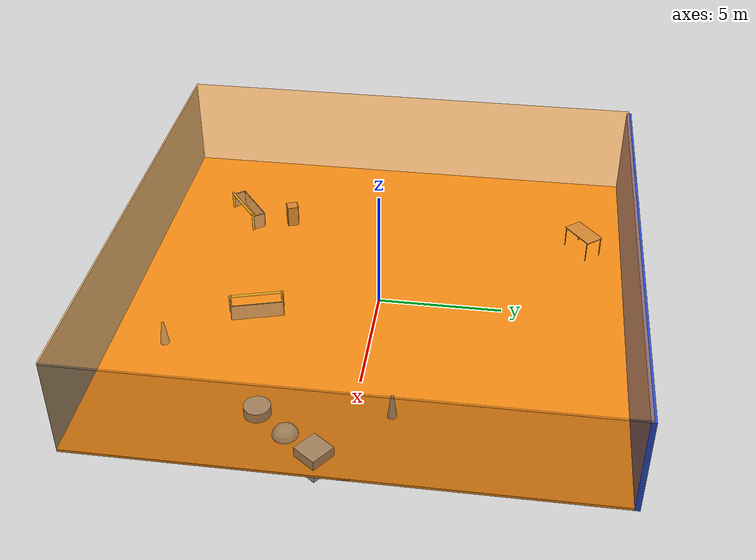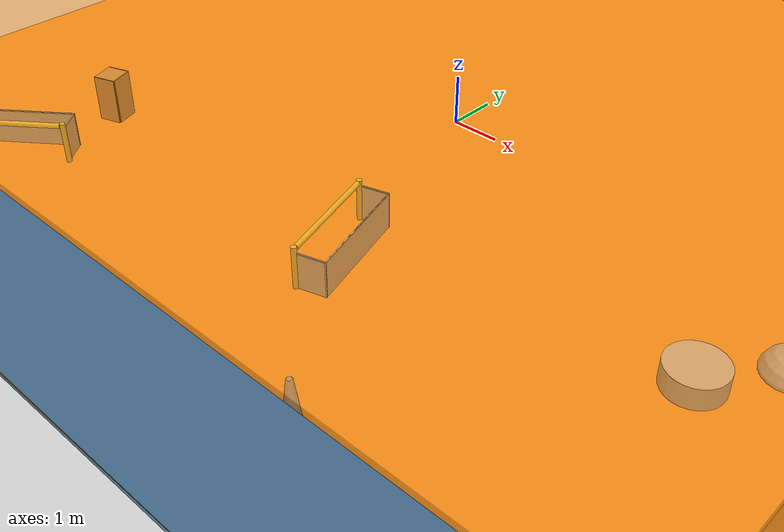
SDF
<sdf version="1.4">
 <world name="default">
  <physics type="ode">
   <max_step_size>0.001</max_step_size>
   <real_time_factor>1</real_time_factor>
   <real_time_update_rate>1000</real_time_update_rate>
   <gravity>0 0 -9.8</gravity>
  </physics>
  <scene><ambient>0.4 0.4 0.4 1</ambient><background>0.7 0.7 0.7 1</background><shadows>1</shadows></scene>
  <model name="Surrounding">
   <static>1</static>
   <link name="Ceiling">
    <collision name="Ceiling_Collision"><geometry><box><size>20 20 0.1</size></box></geometry></collision>
    <visual name="Ceiling_Visual">
     <geometry><box><size>20 20 0.1</size></box></geometry>
     <material>
      <script>
       <uri>file://media/materials/scripts/gazebo.material</uri>
       <name>Gazebo/OrangeTransparent</name>
      </script>
     </material>
    </visual>
    <pose>0 0 4.05 0 0 0</pose>
   </link>
   <link name="Wall_South">
    <collision name="Wall_South_Collision">
     <geometry><box><size>20 0 4</size></box></geometry>
     <pose>0 0 2 0 -0 0</pose>
    </collision>
    <visual name="Wall_South_Visual">
     <pose>0 0 2 0 -0 0</pose>
     <geometry><box><size>20 0 4</size></box></geometry>
     <material>
      <script><uri>file://media/materials/scripts/gazebo.material</uri><name>Gazebo/SkyBlue</name></script>
     </material>
    </visual>
    <velocity_decay><linear>0</linear><angular>0</angular></velocity_decay>
    <pose>0 -10 0 0 -0 0</pose>
   </link>
   <link name="Wall_East">
    <collision name="Wall_21_Collision">
     <geometry><box><size>20 0 4</size></box></geometry>
     <pose>0 0 2 0 -0 0</pose>
    </collision>
    <visual name="Wall_21_Visual">
     <pose>0 0 2 0 -0 0</pose>
     <geometry><box><size>20 0 4</size></box></geometry>
     <material>
      <script>
       <uri>file://media/materials/scripts/gazebo.material</uri>
       <name>Gazebo/OrangeTransparent</name>
      </script>
     </material>
    </visual>
    <velocity_decay><linear>0</linear><angular>0</angular></velocity_decay>
    <pose>10 0 0 0 -0 1.5708</pose>
   </link>
   <link name="Wall_North">
    <collision name="Wall_22_Collision">
     <geometry><box><size>20 0.2 4</size></box></geometry>
     <pose>0 0 2 0 -0 0</pose>
    </collision>
    <visual name="Wall_22_Visual">
     <pose>0 0 2 0 -0 0</pose>
     <geometry><box><size>20 0.2 4</size></box></geometry>
     <material>
      <script><uri>file://media/materials/scripts/gazebo.material</uri><name>Gazebo/Blue</name></script>
     </material>
    </visual>
    <velocity_decay><linear>0</linear><angular>0</angular></velocity_decay>
    <pose>0 10 0 0 -0 0</pose>
   </link>
   <link name="Wall_West">
    <collision name="Wall_23_Collision">
     <geometry><box><size>20 0.2 4</size></box></geometry>
     <pose>0 0 2 0 -0 0</pose>
    </collision>
    <visual name="Wall_23_Visual">
     <pose>0 0 2 0 -0 0</pose>
     <geometry><box><size>20 0.2 4</size></box></geometry>
     <material>
      <script>
       <uri>file://media/materials/scripts/gazebo.material</uri>
       <name>Gazebo/YellowTransparent</name>
      </script>
     </material>
    </visual>
    <velocity_decay><linear>0</linear><angular>0</angular></velocity_decay>
    <pose>-10 0 0 0 0 -1.5708</pose>
   </link>
   <link name="Ground_link">
    <collision name="collision">
     <pose>0 0 .05 0 -0 0</pose>
     <geometry><box><size>20 20 0.1</size></box></geometry>
    </collision>
    <visual name="visual">
     <pose>0 0 .05 0 -0 0</pose>
     <geometry><box><size>20 20 0.1</size></box></geometry>
     <material>
      <script><uri>file://media/materials/scripts/gazebo.material</uri><name>Gazebo/Orange</name></script>
     </material>
    </visual>
   </link>
   <static>1</static>
  </model>
  <spherical_coordinates>
   <surface_model>EARTH_WGS84</surface_model>
   <latitude_deg>0</latitude_deg>
   <longitude_deg>0</longitude_deg>
   <elevation>0</elevation>
   <heading_deg>0</heading_deg>
  </spherical_coordinates>
  <light name="lightball_0" type="diffuse">
   <diffuse>0.8 0.8 0.8 1</diffuse>
   <specular>0.2 0.2 0.2 1</specular>
   <attenuation>
    <range>100</range>
    <constant>0.7</constant>
    <linear>0.01</linear>
    <quadratic>0.001</quadratic>
   </attenuation>
   <direction>-0.5 0.1 -0.9</direction>
   <pose>-8.94484273673 3.87756073549 3.62293299572 0 0 0</pose>
  </light>
  <light name="lightball_1" type="diffuse">
   <diffuse>0.8 0.8 0.8 1</diffuse>
   <specular>0.2 0.2 0.2 1</specular>
   <attenuation>
    <range>100</range>
    <constant>0.7</constant>
    <linear>0.01</linear>
    <quadratic>0.001</quadratic>
   </attenuation>
   <direction>-0.5 0.1 -0.9</direction>
   <pose>-6.30730724638 -1.73076018779 2.59719657794 0 0 0</pose>
  </light>
  <light name="lightball_2" type="diffuse">
   <diffuse>0.8 0.8 0.8 1</diffuse>
   <specular>0.2 0.2 0.2 1</specular>
   <attenuation>
    <range>100</range>
    <constant>0.7</constant>
    <linear>0.01</linear>
    <quadratic>0.001</quadratic>
   </attenuation>
   <direction>-0.5 0.1 -0.9</direction>
   <pose>-0.775198240175 7.69335490664 1.05278255241 0 0 0</pose>
  </light>
  <light name="lightball_3" type="diffuse">
   <diffuse>0.8 0.8 0.8 1</diffuse>
   <specular>0.2 0.2 0.2 1</specular>
   <attenuation>
    <range>100</range>
    <constant>0.7</constant>
    <linear>0.01</linear>
    <quadratic>0.001</quadratic>
   </attenuation>
   <direction>-0.5 0.1 -0.9</direction>
   <pose>5.64368042034 -8.09553696157 2.08632036915 0 0 0</pose>
  </light>
  <include>
   <uri>model://robocup_3Dsim_goal</uri>
   <pose>-5.04475966199 -6.84767228045 0 0 0 2.22538413341</pose>
  </include>
  <include><uri>model://cabinet</uri><pose>-5.00535025685 -4.58837507351 0 0 0 0.330635529511</pose></include>
  <include><uri>model://table</uri><pose>-4.60989451205 8.25264648689 0 0 0 0.686664549243</pose></include>
  <include>
   <uri>model://robocup_3Dsim_goal</uri>
   <pose>1.33647854873 -4.79844358425 0 0 0 0.2821629801</pose>
  </include>
  <include>
   <uri>model://construction_cone</uri>
   <pose>3.8645755997 -7.89521756957 0 0 0 2.64426086827</pose>
  </include>
  <include>
   <uri>model://textured_shapes</uri>
   <pose>8.17922546096 -2.22970622213 0 0 0 2.50150651656</pose>
  </include>
  <include>
   <uri>model://construction_cone</uri>
   <pose>6.74925402813 1.40923296735 0 0 0 2.40038723121</pose>
  </include>
 </world>
</sdf>

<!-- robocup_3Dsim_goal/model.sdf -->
<sdf version="1.5">
  <model name="robocup_3d_goal">
    <static>true</static>
    <link name="left_post">
      <pose>0 1.05 0.45 0 0 0</pose>
      <collision name="collision">
        <geometry>
          <cylinder>
            <radius>0.05</radius>
            <length>0.9</length>
          </cylinder>
        </geometry>
      </collision>
      <visual name="visual">
        <geometry>
          <cylinder>
            <radius>0.05</radius>
            <length>0.9</length>
          </cylinder>
        </geometry>
        <material>
          <script>
            <uri>file://media/materials/scripts/gazebo.material</uri>
            <name>Gazebo/ZincYellow</name>
          </script>
        </material>
      </visual>
    </link>
    <link name="left_support_horiz_lower">
      <pose>0.30 1.05 0.01 0 0 0</pose>
      <collision name="collision">
        <geometry>
          <box>
            <size>0.50 0.02 0.02</size>
          </box>
        </geometry>
      </collision>
      <visual name="visual">
        <geometry>
          <box>
            <size>0.50 0.02 0.02</size>
          </box>
        </geometry>
        <material>
          <script>
            <uri>file://media/materials/scripts/gazebo.material</uri>
            <name>Gazebo/White</name>
          </script>
        </material>
      </visual>
    </link>
    <link name="left_support_horiz_upper">
      <pose>0.30 1.05 0.79 0 0 0</pose>
      <collision name="collision">
        <geometry>
          <box>
            <size>0.50 0.02 0.02</size>
          </box>
        </geometry>
      </collision>
      <visual name="visual">
        <geometry>
          <box>
            <size>0.50 0.02 0.02</size>
          </box>
        </geometry>
        <material>
          <script>
            <uri>file://media/materials/scripts/gazebo.material</uri>
            <name>Gazebo/White</name>
          </script>
        </material>
      </visual>
    </link>
    <link name="left_support_vertical">
      <pose>0.56 1.05 0.4 0 1.5708 0</pose>
      <collision name="collision">
        <geometry>
          <box>
            <size>0.80 0.02 0.02</size>
          </box>
        </geometry>
      </collision>
      <visual name="visual">
        <geometry>
          <box>
            <size>0.80 0.02 0.02</size>
          </box>
        </geometry>
        <material>
          <script>
            <uri>file://media/materials/scripts/gazebo.material</uri>
            <name>Gazebo/White</name>
          </script>
        </material>
      </visual>
    </link>
    <link name="right_support_horiz_lower">
      <pose>0.30 -1.05 0.01 0 0 0</pose>
      <collision name="collision">
        <geometry>
          <box>
            <size>0.50 0.02 0.02</size>
          </box>
        </geometry>
      </collision>
      <visual name="visual">
        <geometry>
          <box>
            <size>0.50 0.02 0.02</size>
          </box>
        </geometry>
        <material>
          <script>
            <uri>file://media/materials/scripts/gazebo.material</uri>
            <name>Gazebo/White</name>
          </script>
        </material>
      </visual>
    </link>
    <link name="right_support_horiz_upper">
      <pose>0.30 -1.05 0.79 0 0 0</pose>
      <collision name="collision">
        <geometry>
          <box>
            <size>0.50 0.02 0.02</size>
          </box>
        </geometry>
      </collision>
      <visual name="visual">
        <geometry>
          <box>
            <size>0.50 0.02 0.02</size>
          </box>
        </geometry>
        <material>
          <script>
            <uri>file://media/materials/scripts/gazebo.material</uri>
            <name>Gazebo/White</name>
          </script>
        </material>
      </visual>
    </link>
    <link name="right_support_vertical">
      <pose>0.56 -1.05 0.4 0 1.5708 0</pose>
      <collision name="collision">
        <geometry>
          <box>
            <size>0.80 0.02 0.02</size>
          </box>
        </geometry>
      </collision>
      <visual name="visual">
        <geometry>
          <box>
            <size>0.80 0.02 0.02</size>
          </box>
        </geometry>
        <material>
          <script>
            <uri>file://media/materials/scripts/gazebo.material</uri>
            <name>Gazebo/White</name>
          </script>
        </material>
      </visual>
    </link>
    <link name="center_support_horiz_lower">
      <pose>0.56 0 0.01 0 1.5708 0</pose>
      <collision name="collision">
        <geometry>
          <box>
            <size>0.02 2.08 0.02</size>
          </box>
        </geometry>
      </collision>
      <visual name="visual">
        <geometry>
          <box>
            <size>0.02 2.08 0.02</size>
          </box>
        </geometry>
        <material>
          <script>
            <uri>file://media/materials/scripts/gazebo.material</uri>
            <name>Gazebo/White</name>
          </script>
        </material>
      </visual>
    </link>
    <link name="center_support_horiz_upper">
      <pose>0.56 0 0.79 0 1.5708 0</pose>
      <collision name="collision">
        <geometry>
          <box>
            <size>0.02 2.08 0.02</size>
          </box>
        </geometry>
      </collision>
      <visual name="visual">
        <geometry>
          <box>
            <size>0.02 2.08 0.02</size>
          </box>
        </geometry>
        <material>
          <script>
            <uri>file://media/materials/scripts/gazebo.material</uri>
            <name>Gazebo/White</name>
          </script>
        </material>
      </visual>
    </link>
    <link name="right_post">
      <pose>0 -1.05 0.45 0 0 0</pose>
      <collision name="collision">
        <geometry>
          <cylinder>
            <radius>0.05</radius>
            <length>0.9</length>
          </cylinder>
        </geometry>
      </collision>
      <visual name="visual">
        <geometry>
          <cylinder>
            <radius>0.05</radius>
            <length>0.9</length>
          </cylinder>
        </geometry>
        <material>
          <script>
            <uri>file://media/materials/scripts/gazebo.material</uri>
            <name>Gazebo/ZincYellow</name>
          </script>
        </material>
      </visual>
    </link>
    <link name="crossbar">
      <pose>0 0 0.85 1.57 1.57 0</pose>
      <collision name="collision">
        <geometry>
          <cylinder>
            <radius>0.05</radius>
            <length>2.0</length>
          </cylinder>
        </geometry>
      </collision>
      <visual name="visual">
        <geometry>
          <cylinder>
            <radius>0.05</radius>
            <length>2.0</length>
          </cylinder>
        </geometry>
        <material>
          <script>
            <uri>file://media/materials/scripts/gazebo.material</uri>
            <name>Gazebo/ZincYellow</name>
          </script>
        </material>
      </visual>
    </link>
    <link name="center_net">
      <pose>0.56 0 0.40 0 0 0</pose>
      <collision name="collision">
        <geometry>
          <box>
            <size>0.01 2.1 0.80</size>
          </box>
        </geometry>
      </collision>
      <visual name="visual">
        <geometry>
          <box>
            <size>0.01 2.1 0.80</size>
          </box>
        </geometry>
        <material>
          <script>
            <uri>model://../model_source/models/robocup09_spl_field/materials/scripts/</uri>
            <uri>model://../model_source/models/robocup09_spl_field/materials/textures/</uri>
            <name>RoboCup/Net</name>
          </script>
        </material>
      </visual>
    </link>
    <link name="left_net">
      <pose>0.30 1.05 0.40 0 0 0</pose>
      <collision name="collision">
        <geometry>
          <box>
            <size>0.50 0.01 0.76</size>
          </box>
        </geometry>
      </collision>
      <visual name="visual">
        <geometry>
          <box>
            <size>0.50 0.01 0.76</size>
          </box>
        </geometry>
        <material>
          <script>
            <uri>model://../model_source/models/robocup09_spl_field/materials/scripts/</uri>
            <uri>model://../model_source/models/robocup09_spl_field/materials/textures/</uri>
            <name>RoboCup/Net</name>
          </script>
        </material>
      </visual>
    </link>
    <link name="right_net">
      <pose>0.30 -1.05 0.40 0 0 0</pose>
      <collision name="collision">
        <geometry>
          <box>
            <size>0.50 0.01 0.76</size>
          </box>
        </geometry>
      </collision>
      <visual name="visual">
        <geometry>
          <box>
            <size>0.50 0.01 0.76</size>
          </box>
        </geometry>
        <material>
          <script>
            <uri>model://../model_source/models/robocup09_spl_field/materials/scripts/</uri>
            <uri>model://../model_source/models/robocup09_spl_field/materials/textures/</uri>
            <name>RoboCup/Net</name>
          </script>
        </material>
      </visual>
    </link>
  </model>
</sdf>

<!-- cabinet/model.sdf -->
<sdf version="1.5">
  <model name="cabinet">
    <static>true</static>
    <link name="cabinet_bottom_plate">
      <inertial>
        <pose>0 0 -1 0 0 0</pose>
        <inertia>
          <ixx>2.050000</ixx>
          <ixy>0</ixy>
          <ixz>0</ixz>
          <iyy>2.050000</iyy>
          <iyz>0</iyz>
          <izz>2.050000</izz>
        </inertia>
        <mass>25.000000</mass>
      </inertial>
      <collision name="cabinet_bottom_plate_geom">
        <pose>0 0 0.010000 0 0 0</pose>
        <geometry>
          <box>
            <size>0.450000 0.450000 0.020000</size>
          </box>
        </geometry>
      </collision>
      <visual name="cabinet_bottom_plate_geom_visual">
        <pose>0 0 0.010000 0 0 0</pose>
        <geometry>
          <box>
            <size>0.450000 0.450000 0.020000</size>
          </box>
        </geometry>
        <material>
          <script>
            <uri>model://media/materials/scripts/gazebo.material</uri>
            <name>Gazebo/Wood</name>
          </script>
        </material>
      </visual>
      <collision name="cabinet_bottom_plate_geom_cabinet_back_plate">
        <pose>0.235000 0 0.510000 0 0 0</pose>
        <geometry>
          <box>
            <size>0.020000 0.450000 1.020000</size>
          </box>
        </geometry>
      </collision>
      <visual name="cabinet_bottom_plate_geom_cabinet_back_plate_visual">
        <pose>0.235000 0 0.510000 0 0 0</pose>
        <geometry>
          <box>
            <size>0.020000 0.450000 1.020000</size>
          </box>
        </geometry>
        <material>
          <script>
            <uri>model://media/materials/scripts/gazebo.material</uri>
            <name>Gazebo/Wood</name>
          </script>
        </material>
      </visual>
      <collision name="cabinet_bottom_plate_geom_cabinet_left_plate">
        <pose>0 0.235000 0.510000 0 0 0</pose>
        <geometry>
          <box>
            <size>0.450000 0.020000 1.020000</size>
          </box>
        </geometry>
      </collision>
      <visual name="cabinet_bottom_plate_geom_cabinet_left_plate_visual">
        <pose>0 0.235000 0.510000 0 0 0</pose>
        <geometry>
          <box>
            <size>0.450000 0.020000 1.020000</size>
          </box>
        </geometry>
        <material>
          <script>
            <uri>model://media/materials/scripts/gazebo.material</uri>
            <name>Gazebo/Wood</name>
          </script>
        </material>
      </visual>
      <collision name="cabinet_bottom_plate_geom_cabinet_middle_plate">
        <pose>0 0 0.510000 0 0 0</pose>
        <geometry>
          <box>
            <size>0.450000 0.450000 0.020000</size>
          </box>
        </geometry>
      </collision>
      <visual name="cabinet_bottom_plate_geom_cabinet_middle_plate_visual">
        <pose>0 0 0.510000 0 0 0</pose>
        <geometry>
          <box>
            <size>0.450000 0.450000 0.020000</size>
          </box>
        </geometry>
        <material>
          <script>
            <uri>model://media/materials/scripts/gazebo.material</uri>
            <name>Gazebo/Wood</name>
          </script>
        </material>
      </visual>
      <collision name="cabinet_bottom_plate_geom_cabinet_right_plate">
        <pose>0 -0.235000 0.510000 0 0 0</pose>
        <geometry>
          <box>
            <size>0.450000 0.020000 1.020000</size>
          </box>
        </geometry>
      </collision>
      <visual name="cabinet_bottom_plate_geom_cabinet_right_plate_visual">
        <pose>0 -0.235000 0.510000 0 0 0</pose>
        <geometry>
          <box>
            <size>0.450000 0.020000 1.020000</size>
          </box>
        </geometry>
        <material>
          <script>
            <uri>model://media/materials/scripts/gazebo.material</uri>
            <name>Gazebo/Wood</name>
          </script>
        </material>
      </visual>
      <collision name="cabinet_bottom_plate_geom_cabinet_top_plate">
        <pose>0 0 1.010000 0 0 0</pose>
        <geometry>
          <box>
            <size>0.450000 0.450000 0.020000</size>
          </box>
        </geometry>
      </collision>
      <visual name="cabinet_bottom_plate_geom_cabinet_top_plate_visual">
        <pose>0 0 1.010000 0 0 0</pose>
        <geometry>
          <box>
            <size>0.450000 0.450000 0.020000</size>
          </box>
        </geometry>
        <material>
          <script>
            <uri>model://media/materials/scripts/gazebo.material</uri>
            <name>Gazebo/Wood</name>
          </script>
        </material>
      </visual>
    </link>
  </model>
</sdf>

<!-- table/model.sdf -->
<sdf version="1.5">
  <model name="table">
    <static>true</static>
    <link name="link">
      <collision name="surface">
        <pose>0 0 1.0 0 0 0</pose>
        <geometry>
          <box>
            <size>1.5 0.8 0.03</size>
          </box>
        </geometry>
        <surface>
          <friction>
            <ode>
              <mu>0.6</mu>
              <mu2>0.6</mu2>
            </ode>
          </friction>
        </surface>
      </collision>
      <visual name="visual1">
        <pose>0 0 1.0 0 0 0</pose>
        <geometry>
          <box>
            <size>1.5 0.8 0.03</size>
          </box>
        </geometry>
        <material>
          <script>
            <uri>model://media/materials/scripts/gazebo.material</uri>
            <name>Gazebo/Wood</name>
          </script>
        </material>
      </visual>
      <collision name="front_left_leg">
        <pose>0.68 0.38 0.5 0 0 0</pose>
        <geometry>
          <cylinder>
            <radius>0.02</radius>
            <length>1.0</length>
          </cylinder>
        </geometry>
      </collision>
      <visual name="front_left_leg">
        <pose>0.68 0.38 0.5 0 0 0</pose>
        <geometry>
          <cylinder>
            <radius>0.02</radius>
            <length>1.0</length>
          </cylinder>
        </geometry>
        <material>
          <script>
            <uri>model://media/materials/scripts/gazebo.material</uri>
            <name>Gazebo/Grey</name>
          </script>
        </material>
      </visual>
      <collision name="front_right_leg">
        <pose>0.68 -0.38 0.5 0 0 0</pose>
        <geometry>
          <cylinder>
            <radius>0.02</radius>
            <length>1.0</length>
          </cylinder>
        </geometry>
      </collision>
      <visual name="front_right_leg">
        <pose>0.68 -0.38 0.5 0 0 0</pose>
        <geometry>
          <cylinder>
            <radius>0.02</radius>
            <length>1.0</length>
          </cylinder>
        </geometry>
        <material>
          <script>
            <uri>model://media/materials/scripts/gazebo.material</uri>
            <name>Gazebo/Grey</name>
          </script>
        </material>
      </visual>
      <collision name="back_right_leg">
        <pose>-0.68 -0.38 0.5 0 0 0</pose>
        <geometry>
          <cylinder>
            <radius>0.02</radius>
            <length>1.0</length>
          </cylinder>
        </geometry>
      </collision>
      <visual name="back_right_leg">
        <pose>-0.68 -0.38 0.5 0 0 0</pose>
        <geometry>
          <cylinder>
            <radius>0.02</radius>
            <length>1.0</length>
          </cylinder>
        </geometry>
        <material>
          <script>
            <uri>model://media/materials/scripts/gazebo.material</uri>
            <name>Gazebo/Grey</name>
          </script>
        </material>
      </visual>
      <collision name="back_left_leg">
        <pose>-0.68 0.38 0.5 0 0 0</pose>
        <geometry>
          <cylinder>
            <radius>0.02</radius>
            <length>1.0</length>
          </cylinder>
        </geometry>
      </collision>
      <visual name="back_left_leg">
        <pose>-0.68 0.38 0.5 0 0 0</pose>
        <geometry>
          <cylinder>
            <radius>0.02</radius>
            <length>1.0</length>
          </cylinder>
        </geometry>
        <material>
          <script>
            <uri>model://media/materials/scripts/gazebo.material</uri>
            <name>Gazebo/Grey</name>
          </script>
        </material>
      </visual>
    </link>
  </model>
</sdf>

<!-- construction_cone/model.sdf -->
<sdf version="1.5">
  <model name="Construction Cone">
    <link name="link">
      <collision name="collision">
        <geometry>
          <mesh>
            <scale>10 10 10</scale>
            <uri>file://isr-testbed/construction_cone/meshes/construction_cone.dae</uri>
          </mesh>
        </geometry>
      </collision>
      <visual name="visual">
        <geometry>
          <mesh>
            <scale>10 10 10</scale>
            <uri>file://isr-testbed/construction_cone/meshes/construction_cone.dae</uri>
          </mesh>
        </geometry>
      </visual>
    </link>
  </model>
</sdf>

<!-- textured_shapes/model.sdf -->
<sdf version="1.6">
  <model name="textured_shapes">
    <pose>0 0 0.5 0 0 0</pose>
    <link name="box">
      <pose>0 -1.5 0 0 0 0</pose>
      <collision name="collision">
        <geometry>
          <box>
            <size>1 1 1</size>
          </box>
        </geometry>
      </collision>
      <visual name="visual">
        <geometry>
          <box>
            <size>1 1 1</size>
          </box>
        </geometry>
        <material>
          <script>
            <uri>model://../model_source/models/textured_shapes/materials/scripts</uri>
            <uri>model://../model_source/models/textured_shapes/materials/textures</uri>
            <name>TexturedShape/Squares</name>
          </script>
        </material>
      </visual>
    </link>
    <link name="sphere">
      <collision name="collision">
        <geometry>
          <sphere>
            <radius>0.5</radius>
          </sphere>
        </geometry>
      </collision>
      <visual name="visual">
        <geometry>
          <sphere>
            <radius>0.5</radius>
          </sphere>
        </geometry>
        <material>
          <script>
            <uri>model://../model_source/models/textured_shapes/materials/scripts</uri>
            <uri>model://../model_source/models/textured_shapes/materials/textures</uri>
            <name>TexturedShape/Squares</name>
          </script>
        </material>
      </visual>
    </link>
    <link name="cylinder">
      <pose>0 1.5 0 0 0 0</pose>
      <collision name="collision">
        <geometry>
          <cylinder>
            <radius>0.5</radius>
            <length>1</length>
          </cylinder>
        </geometry>
      </collision>
      <visual name="visual">
        <geometry>
          <cylinder>
            <radius>0.5</radius>
            <length>1</length>
          </cylinder>
        </geometry>
        <material>
          <script>
            <uri>model://../model_source/models/textured_shapes/materials/scripts</uri>
            <uri>model://../model_source/models/textured_shapes/materials/textures</uri>
            <name>TexturedShape/Squares</name>
          </script>
        </material>
      </visual>
    </link>
  </model>
</sdf>
